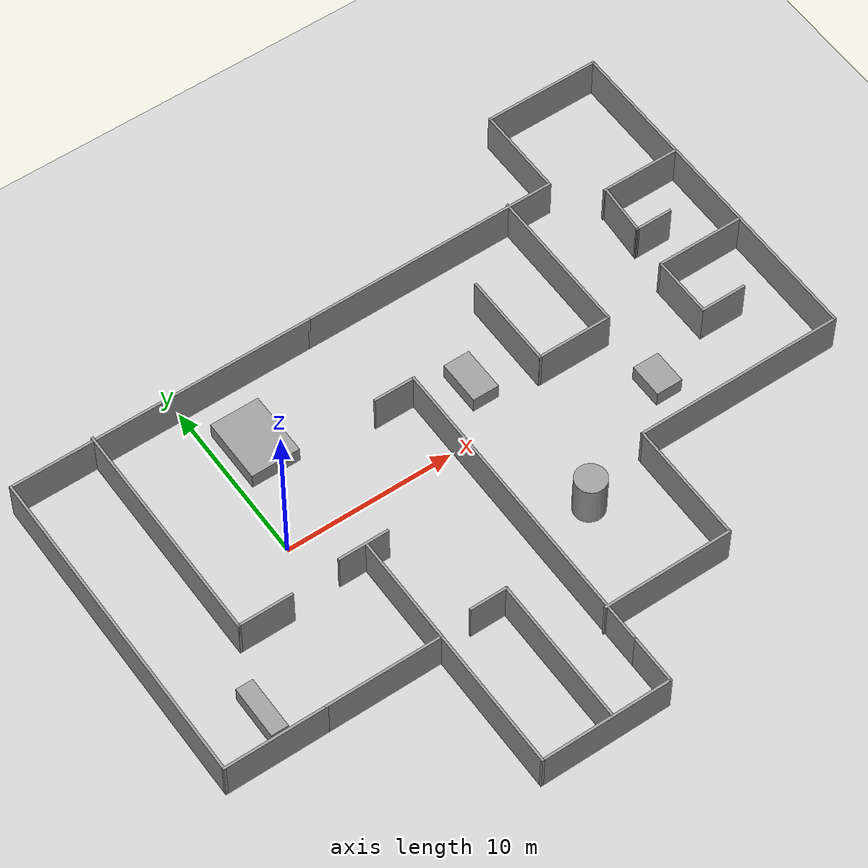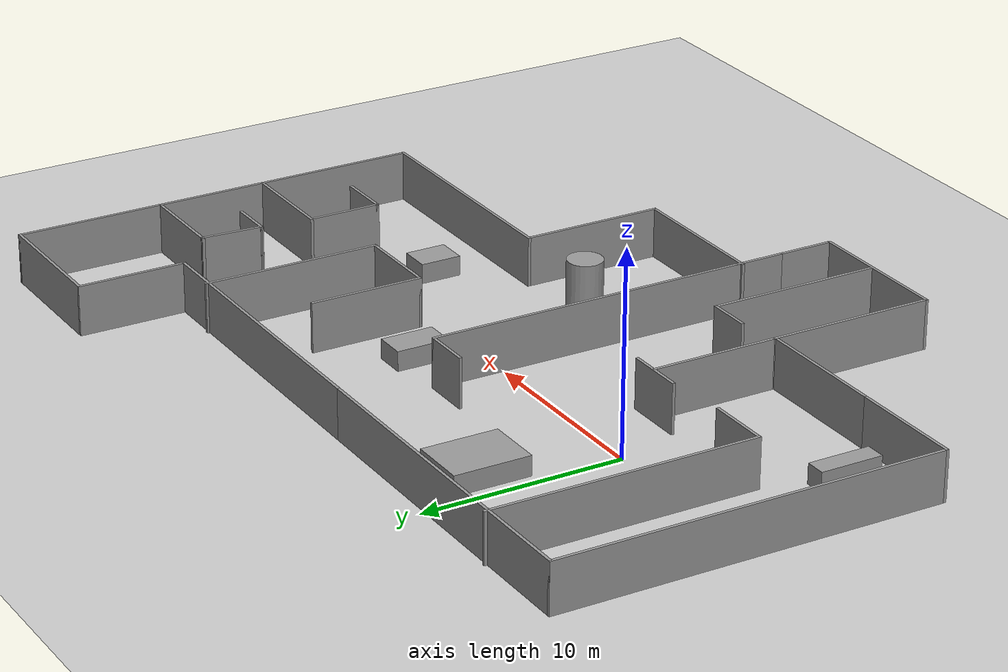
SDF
<sdf version="1.7">
 <world name="default">
  <light name="sun" type="directional">
   <pose>0 0 10 0 -0 0</pose>
   <diffuse>0.8 0.8 0.8 1</diffuse>
   <specular>0.2 0.2 0.2 1</specular>
   <attenuation>
    <range>1000</range>
    <constant>0.9</constant>
    <linear>0.01</linear>
    <quadratic>0.001</quadratic>
   </attenuation>
   <direction>-0.5 0.1 -0.9</direction>
   <spot><inner_angle>0</inner_angle><outer_angle>0</outer_angle><falloff>0</falloff></spot>
  </light>
  <model name="ground_plane">
   <static>1</static>
   <link name="link">
    <collision name="collision">
     <geometry><plane><normal>0 0 1</normal><size>100 100</size></plane></geometry>
     <surface>
      <contact><collide_bitmask>65535</collide_bitmask></contact>
      <friction><ode><mu>100</mu><mu2>50</mu2></ode></friction>
     </surface>
    </collision>
    <visual name="visual">
     <cast_shadows>0</cast_shadows>
     <geometry><plane><normal>0 0 1</normal><size>100 100</size></plane></geometry>
     <material>
      <script><uri>file://media/materials/scripts/gazebo.material</uri><name>Gazebo/Grey</name></script>
     </material>
    </visual>
   </link>
  </model>
  <gravity>0 0 -9.8</gravity>
  <magnetic_field>6e-06 2.3e-05 -4.2e-05</magnetic_field>
  <atmosphere type="adiabatic"/>
  <physics type="ode">
   <max_step_size>0.001</max_step_size>
   <real_time_factor>1</real_time_factor>
   <real_time_update_rate>1000</real_time_update_rate>
  </physics>
  <scene><ambient>0.4 0.4 0.4 1</ambient><background>0.7 0.7 0.7 1</background><shadows>1</shadows></scene>
  <audio><device>default</device></audio>
  <spherical_coordinates>
   <surface_model>EARTH_WGS84</surface_model>
   <latitude_deg>0</latitude_deg>
   <longitude_deg>0</longitude_deg>
   <elevation>0</elevation>
   <heading_deg>0</heading_deg>
  </spherical_coordinates>
  <model name="unterIItenv">
   <pose>10.0272 -1.47457 0 0 -0 0</pose>
   <link name="Wall_0">
    <collision name="Wall_0_Collision">
     <geometry><box><size>6.75 0.15 2.5</size></box></geometry>
     <pose>0 0 1.25 0 -0 0</pose>
    </collision>
    <visual name="Wall_0_Visual">
     <pose>0 0 1.25 0 -0 0</pose>
     <geometry><box><size>6.75 0.15 2.5</size></box></geometry>
     <material>
      <script><uri>file://media/materials/scripts/gazebo.material</uri><name>Gazebo/Grey</name></script>
      <ambient>1 1 1 1</ambient>
     </material>
     <meta><layer>0</layer></meta>
    </visual>
    <pose>-10.875 -8.2 0 0 -0 0</pose>
   </link>
   <link name="Wall_10">
    <collision name="Wall_10_Collision">
     <geometry><box><size>7.75 0.15 2.5</size></box></geometry>
     <pose>0 0 1.25 0 -0 0</pose>
    </collision>
    <visual name="Wall_10_Visual">
     <pose>0 0 1.25 0 -0 0</pose>
     <geometry><box><size>7.75 0.15 2.5</size></box></geometry>
     <material>
      <script><uri>file://media/materials/scripts/gazebo.material</uri><name>Gazebo/Grey</name></script>
      <ambient>1 1 1 1</ambient>
     </material>
     <meta><layer>0</layer></meta>
    </visual>
    <pose>-3.625 -16.5 0 0 -0 3.14159</pose>
   </link>
   <link name="Wall_11">
    <collision name="Wall_11_Collision">
     <geometry><box><size>8.5 0.15 2.5</size></box></geometry>
     <pose>0 0 1.25 0 -0 0</pose>
    </collision>
    <visual name="Wall_11_Visual">
     <pose>0 0 1.25 0 -0 0</pose>
     <geometry><box><size>8.5 0.15 2.5</size></box></geometry>
     <material>
      <script><uri>file://media/materials/scripts/gazebo.material</uri><name>Gazebo/Grey</name></script>
      <ambient>1 1 1 1</ambient>
     </material>
     <meta><layer>0</layer></meta>
    </visual>
    <pose>-7.425 -12.325 0 0 -0 1.5708</pose>
   </link>
   <link name="Wall_12">
    <collision name="Wall_12_Collision">
     <geometry><box><size>6.5 0.15 2.5</size></box></geometry>
     <pose>0 0 1.25 0 -0 0</pose>
    </collision>
    <visual name="Wall_12_Visual">
     <pose>0 0 1.25 0 -0 0</pose>
     <geometry><box><size>6.5 0.15 2.5</size></box></geometry>
     <material>
      <script><uri>file://media/materials/scripts/gazebo.material</uri><name>Gazebo/Grey</name></script>
      <ambient>1 1 1 1</ambient>
     </material>
     <meta><layer>0</layer></meta>
    </visual>
    <pose>-7.425 -4.975 0 0 -0 1.5708</pose>
   </link>
   <link name="Wall_14">
    <collision name="Wall_14_Collision">
     <geometry><box><size>3 0.15 2.5</size></box></geometry>
     <pose>0 0 1.25 0 -0 0</pose>
    </collision>
    <visual name="Wall_14_Visual">
     <pose>0 0 1.25 0 -0 0</pose>
     <geometry><box><size>3 0.15 2.5</size></box></geometry>
     <material>
      <script><uri>file://media/materials/scripts/gazebo.material</uri><name>Gazebo/Grey</name></script>
      <ambient>1 1 1 1</ambient>
     </material>
     <meta><layer>0</layer></meta>
    </visual>
    <pose>-7.56761 -1.72376 0 0 -0 0</pose>
   </link>
   <link name="Wall_16">
    <collision name="Wall_16_Collision">
     <geometry><box><size>8.75 0.15 2.5</size></box></geometry>
     <pose>0 0 1.25 0 -0 0</pose>
    </collision>
    <visual name="Wall_16_Visual">
     <pose>0 0 1.25 0 -0 0</pose>
     <geometry><box><size>8.75 0.15 2.5</size></box></geometry>
     <material>
      <script><uri>file://media/materials/scripts/gazebo.material</uri><name>Gazebo/Grey</name></script>
      <ambient>1 1 1 1</ambient>
     </material>
     <meta><layer>0</layer></meta>
    </visual>
    <pose>-3.26129 -12.0705 0 0 -0 1.5708</pose>
   </link>
   <link name="Wall_18">
    <collision name="Wall_18_Collision">
     <geometry><box><size>2.25 0.15 2.5</size></box></geometry>
     <pose>0 0 1.25 0 -0 0</pose>
    </collision>
    <visual name="Wall_18_Visual">
     <pose>0 0 1.25 0 -0 0</pose>
     <geometry><box><size>2.25 0.15 2.5</size></box></geometry>
     <material>
      <script><uri>file://media/materials/scripts/gazebo.material</uri><name>Gazebo/Grey</name></script>
      <ambient>1 1 1 1</ambient>
     </material>
     <meta><layer>0</layer></meta>
    </visual>
    <pose>-4.31129 -7.77047 0 0 -0 3.14159</pose>
   </link>
   <link name="Wall_2">
    <collision name="Wall_2_Collision">
     <geometry><box><size>6 0.15 2.5</size></box></geometry>
     <pose>0 0 1.25 0 -0 0</pose>
    </collision>
    <visual name="Wall_2_Visual">
     <pose>0 0 1.25 0 -0 0</pose>
     <geometry><box><size>6 0.15 2.5</size></box></geometry>
     <material>
      <script><uri>file://media/materials/scripts/gazebo.material</uri><name>Gazebo/Grey</name></script>
      <ambient>1 1 1 1</ambient>
     </material>
     <meta><layer>0</layer></meta>
    </visual>
    <pose>-17.1 -8.2 0 0 -0 3.14159</pose>
   </link>
   <link name="Wall_21">
    <collision name="Wall_21_Collision">
     <geometry><box><size>13.5 0.15 2.5</size></box></geometry>
     <pose>0 0 1.25 0 -0 0</pose>
    </collision>
    <visual name="Wall_21_Visual">
     <pose>0 0 1.25 0 -0 0</pose>
     <geometry><box><size>13.5 0.15 2.5</size></box></geometry>
     <material>
      <script><uri>file://media/materials/scripts/gazebo.material</uri><name>Gazebo/Grey</name></script>
      <ambient>1 1 1 1</ambient>
     </material>
     <meta><layer>0</layer></meta>
    </visual>
    <pose>-15.1485 4.62054 0 0 -0 -1.5708</pose>
   </link>
   <link name="Wall_22">
    <collision name="Wall_22_Collision">
     <geometry><box><size>3.25 0.15 2.5</size></box></geometry>
     <pose>0 0 1.25 0 -0 0</pose>
    </collision>
    <visual name="Wall_22_Visual">
     <pose>0 0 1.25 0 -0 0</pose>
     <geometry><box><size>3.25 0.15 2.5</size></box></geometry>
     <material>
      <script><uri>file://media/materials/scripts/gazebo.material</uri><name>Gazebo/Grey</name></script>
      <ambient>1 1 1 1</ambient>
     </material>
     <meta><layer>0</layer></meta>
    </visual>
    <pose>-13.5985 -2.05446 0 0 -0 0</pose>
   </link>
   <link name="Wall_26">
    <collision name="Wall_26_Collision">
     <geometry><box><size>15.5 0.15 2.5</size></box></geometry>
     <pose>0 0 1.25 0 -0 0</pose>
    </collision>
    <visual name="Wall_26_Visual">
     <pose>0 0 1.25 0 -0 0</pose>
     <geometry><box><size>15.5 0.15 2.5</size></box></geometry>
     <material>
      <script><uri>file://media/materials/scripts/gazebo.material</uri><name>Gazebo/Grey</name></script>
      <ambient>1 1 1 1</ambient>
     </material>
     <meta><layer>0</layer></meta>
    </visual>
    <pose>5.5 11.15 0 0 -0 0</pose>
   </link>
   <link name="Wall_27">
    <collision name="Wall_27_Collision">
     <geometry><box><size>5.5 0.15 2.5</size></box></geometry>
     <pose>0 0 1.25 0 -0 0</pose>
    </collision>
    <visual name="Wall_27_Visual">
     <pose>0 0 1.25 0 -0 0</pose>
     <geometry><box><size>5.5 0.15 2.5</size></box></geometry>
     <material>
      <script><uri>file://media/materials/scripts/gazebo.material</uri><name>Gazebo/Grey</name></script>
      <ambient>1 1 1 1</ambient>
     </material>
     <meta><layer>0</layer></meta>
    </visual>
    <pose>13.175 13.825 0 0 -0 1.5708</pose>
   </link>
   <link name="Wall_28">
    <collision name="Wall_28_Collision">
     <geometry><box><size>7 0.15 2.5</size></box></geometry>
     <pose>0 0 1.25 0 -0 0</pose>
    </collision>
    <visual name="Wall_28_Visual">
     <pose>0 0 1.25 0 -0 0</pose>
     <geometry><box><size>7 0.15 2.5</size></box></geometry>
     <material>
      <script><uri>file://media/materials/scripts/gazebo.material</uri><name>Gazebo/Grey</name></script>
      <ambient>1 1 1 1</ambient>
     </material>
     <meta><layer>0</layer></meta>
    </visual>
    <pose>16.6 16.5 0 0 -0 0</pose>
   </link>
   <link name="Wall_29">
    <collision name="Wall_29_Collision">
     <geometry><box><size>21 0.15 2.5</size></box></geometry>
     <pose>0 0 1.25 0 -0 0</pose>
    </collision>
    <visual name="Wall_29_Visual">
     <pose>0 0 1.25 0 -0 0</pose>
     <geometry><box><size>21 0.15 2.5</size></box></geometry>
     <material>
      <script><uri>file://media/materials/scripts/gazebo.material</uri><name>Gazebo/Grey</name></script>
      <ambient>1 1 1 1</ambient>
     </material>
     <meta><layer>0</layer></meta>
    </visual>
    <pose>20.025 6.075 0 0 -0 -1.5708</pose>
   </link>
   <link name="Wall_3">
    <collision name="Wall_3_Collision">
     <geometry><box><size>19.5 0.15 2.5</size></box></geometry>
     <pose>0 0 1.25 0 -0 0</pose>
    </collision>
    <visual name="Wall_3_Visual">
     <pose>0 0 1.25 0 -0 0</pose>
     <geometry><box><size>19.5 0.15 2.5</size></box></geometry>
     <material>
      <script><uri>file://media/materials/scripts/gazebo.material</uri><name>Gazebo/Grey</name></script>
      <ambient>1 1 1 1</ambient>
     </material>
     <meta><layer>0</layer></meta>
    </visual>
    <pose>-20.025 1.475 0 0 -0 1.5708</pose>
   </link>
   <link name="Wall_30">
    <collision name="Wall_30_Collision">
     <geometry><box><size>12.5 0.15 2.5</size></box></geometry>
     <pose>0 0 1.25 0 -0 0</pose>
    </collision>
    <visual name="Wall_30_Visual">
     <pose>0 0 1.25 0 -0 0</pose>
     <geometry><box><size>12.5 0.15 2.5</size></box></geometry>
     <material>
      <script><uri>file://media/materials/scripts/gazebo.material</uri><name>Gazebo/Grey</name></script>
      <ambient>1 1 1 1</ambient>
     </material>
     <meta><layer>0</layer></meta>
    </visual>
    <pose>13.85 -4.35 0 0 -0 3.14159</pose>
   </link>
   <link name="Wall_31">
    <collision name="Wall_31_Collision">
     <geometry><box><size>7.25 0.15 2.5</size></box></geometry>
     <pose>0 0 1.25 0 -0 0</pose>
    </collision>
    <visual name="Wall_31_Visual">
     <pose>0 0 1.25 0 -0 0</pose>
     <geometry><box><size>7.25 0.15 2.5</size></box></geometry>
     <material>
      <script><uri>file://media/materials/scripts/gazebo.material</uri><name>Gazebo/Grey</name></script>
      <ambient>1 1 1 1</ambient>
     </material>
     <meta><layer>0</layer></meta>
    </visual>
    <pose>7.675 -7.9 0 0 -0 -1.5708</pose>
   </link>
   <link name="Wall_34">
    <collision name="Wall_34_Collision">
     <geometry><box><size>7.75 0.15 2.5</size></box></geometry>
     <pose>0 0 1.25 0 -0 0</pose>
    </collision>
    <visual name="Wall_34_Visual">
     <pose>0 0 1.25 0 -0 0</pose>
     <geometry><box><size>7.75 0.15 2.5</size></box></geometry>
     <material>
      <script><uri>file://media/materials/scripts/gazebo.material</uri><name>Gazebo/Grey</name></script>
      <ambient>1 1 1 1</ambient>
     </material>
     <meta><layer>0</layer></meta>
    </visual>
    <pose>3.875 -11.45 0 0 -0 3.14159</pose>
   </link>
   <link name="Wall_36">
    <collision name="Wall_36_Collision">
     <geometry><box><size>4.75 0.15 2.5</size></box></geometry>
     <pose>0 0 1.25 0 -0 0</pose>
    </collision>
    <visual name="Wall_36_Visual">
     <pose>0 0 1.25 0 -0 0</pose>
     <geometry><box><size>4.75 0.15 2.5</size></box></geometry>
     <material>
      <script><uri>file://media/materials/scripts/gazebo.material</uri><name>Gazebo/Grey</name></script>
      <ambient>1 1 1 1</ambient>
     </material>
     <meta><layer>0</layer></meta>
    </visual>
    <pose>17.6385 9.12255 0 0 -0 3.14159</pose>
   </link>
   <link name="Wall_37">
    <collision name="Wall_37_Collision">
     <geometry><box><size>3.18945 0.15 2.5</size></box></geometry>
     <pose>0 0 1.25 0 -0 0</pose>
    </collision>
    <visual name="Wall_37_Visual">
     <pose>0 0 1.25 0 -0 0</pose>
     <geometry><box><size>3.18945 0.15 2.5</size></box></geometry>
     <material>
      <script><uri>file://media/materials/scripts/gazebo.material</uri><name>Gazebo/Grey</name></script>
      <ambient>1 1 1 1</ambient>
     </material>
     <meta><layer>0</layer></meta>
    </visual>
    <pose>15.3031 7.60654 0 0 -0 -1.64069</pose>
   </link>
   <link name="Wall_38">
    <collision name="Wall_38_Collision">
     <geometry><box><size>2.25 0.15 2.5</size></box></geometry>
     <pose>0 0 1.25 0 -0 0</pose>
    </collision>
    <visual name="Wall_38_Visual">
     <pose>0 0 1.25 0 -0 0</pose>
     <geometry><box><size>2.25 0.15 2.5</size></box></geometry>
     <material>
      <script><uri>file://media/materials/scripts/gazebo.material</uri><name>Gazebo/Grey</name></script>
      <ambient>1 1 1 1</ambient>
     </material>
     <meta><layer>0</layer></meta>
    </visual>
    <pose>16.247 6.09052 0 0 -0 0</pose>
   </link>
   <link name="Wall_4">
    <collision name="Wall_4_Collision">
     <geometry><box><size>18 0.15 2.5</size></box></geometry>
     <pose>0 0 1.25 0 -0 0</pose>
    </collision>
    <visual name="Wall_4_Visual">
     <pose>0 0 1.25 0 -0 0</pose>
     <geometry><box><size>18 0.15 2.5</size></box></geometry>
     <material>
      <script><uri>file://media/materials/scripts/gazebo.material</uri><name>Gazebo/Grey</name></script>
      <ambient>1 1 1 1</ambient>
     </material>
     <meta><layer>0</layer></meta>
    </visual>
    <pose>-11.1 11.15 0 0 -0 0</pose>
   </link>
   <link name="Wall_40">
    <collision name="Wall_40_Collision">
     <geometry><box><size>5.25 0.15 2.5</size></box></geometry>
     <pose>0 0 1.25 0 -0 0</pose>
    </collision>
    <visual name="Wall_40_Visual">
     <pose>0 0 1.25 0 -0 0</pose>
     <geometry><box><size>5.25 0.15 2.5</size></box></geometry>
     <material>
      <script><uri>file://media/materials/scripts/gazebo.material</uri><name>Gazebo/Grey</name></script>
      <ambient>1 1 1 1</ambient>
     </material>
     <meta><layer>0</layer></meta>
    </visual>
    <pose>17.3893 3.57464 0 0 -0 3.14159</pose>
   </link>
   <link name="Wall_41">
    <collision name="Wall_41_Collision">
     <geometry><box><size>3.75 0.15 2.5</size></box></geometry>
     <pose>0 0 1.25 0 -0 0</pose>
    </collision>
    <visual name="Wall_41_Visual">
     <pose>0 0 1.25 0 -0 0</pose>
     <geometry><box><size>3.75 0.15 2.5</size></box></geometry>
     <material>
      <script><uri>file://media/materials/scripts/gazebo.material</uri><name>Gazebo/Grey</name></script>
      <ambient>1 1 1 1</ambient>
     </material>
     <meta><layer>0</layer></meta>
    </visual>
    <pose>14.8393 1.77464 0 0 -0 -1.5708</pose>
   </link>
   <link name="Wall_42">
    <collision name="Wall_42_Collision">
     <geometry><box><size>2.75 0.15 2.5</size></box></geometry>
     <pose>0 0 1.25 0 -0 0</pose>
    </collision>
    <visual name="Wall_42_Visual">
     <pose>0 0 1.25 0 -0 0</pose>
     <geometry><box><size>2.75 0.15 2.5</size></box></geometry>
     <material>
      <script><uri>file://media/materials/scripts/gazebo.material</uri><name>Gazebo/Grey</name></script>
      <ambient>1 1 1 1</ambient>
     </material>
     <meta><layer>0</layer></meta>
    </visual>
    <pose>16.1393 -0.025362 0 0 -0 0</pose>
   </link>
   <link name="Wall_44">
    <collision name="Wall_44_Collision">
     <geometry><box><size>9 0.15 2.5</size></box></geometry>
     <pose>0 0 1.25 0 -0 0</pose>
    </collision>
    <visual name="Wall_44_Visual">
     <pose>0 0 1.25 0 -0 0</pose>
     <geometry><box><size>9 0.15 2.5</size></box></geometry>
     <material>
      <script><uri>file://media/materials/scripts/gazebo.material</uri><name>Gazebo/Grey</name></script>
      <ambient>1 1 1 1</ambient>
     </material>
     <meta><layer>0</layer></meta>
    </visual>
    <pose>10.5463 6.83479 0 0 -0 -1.5708</pose>
   </link>
   <link name="Wall_45">
    <collision name="Wall_45_Collision">
     <geometry><box><size>4.5 0.15 2.5</size></box></geometry>
     <pose>0 0 1.25 0 -0 0</pose>
    </collision>
    <visual name="Wall_45_Visual">
     <pose>0 0 1.25 0 -0 0</pose>
     <geometry><box><size>4.5 0.15 2.5</size></box></geometry>
     <material>
      <script><uri>file://media/materials/scripts/gazebo.material</uri><name>Gazebo/Grey</name></script>
      <ambient>1 1 1 1</ambient>
     </material>
     <meta><layer>0</layer></meta>
    </visual>
    <pose>8.37134 2.40979 0 0 -0 3.14159</pose>
   </link>
   <link name="Wall_46">
    <collision name="Wall_46_Collision">
     <geometry><box><size>5.75 0.15 2.5</size></box></geometry>
     <pose>0 0 1.25 0 -0 0</pose>
    </collision>
    <visual name="Wall_46_Visual">
     <pose>0 0 1.25 0 -0 0</pose>
     <geometry><box><size>5.75 0.15 2.5</size></box></geometry>
     <material>
      <script><uri>file://media/materials/scripts/gazebo.material</uri><name>Gazebo/Grey</name></script>
      <ambient>1 1 1 1</ambient>
     </material>
     <meta><layer>0</layer></meta>
    </visual>
    <pose>6.19633 5.20979 0 0 -0 1.5708</pose>
   </link>
   <link name="Wall_6">
    <collision name="Wall_6_Collision">
     <geometry><box><size>2.5 0.15 2.5</size></box></geometry>
     <pose>0 0 1.25 0 -0 0</pose>
    </collision>
    <visual name="Wall_6_Visual">
     <pose>0 0 1.25 0 -0 0</pose>
     <geometry><box><size>2.5 0.15 2.5</size></box></geometry>
     <material>
      <script><uri>file://media/materials/scripts/gazebo.material</uri><name>Gazebo/Grey</name></script>
      <ambient>1 1 1 1</ambient>
     </material>
     <meta><layer>0</layer></meta>
    </visual>
    <pose>-1 5.05 0 0 -0 0</pose>
   </link>
   <link name="Wall_7">
    <collision name="Wall_7_Collision">
     <geometry><box><size>16.5 0.15 2.5</size></box></geometry>
     <pose>0 0 1.25 0 -0 0</pose>
    </collision>
    <visual name="Wall_7_Visual">
     <pose>0 0 1.25 0 -0 0</pose>
     <geometry><box><size>16.5 0.15 2.5</size></box></geometry>
     <material>
      <script><uri>file://media/materials/scripts/gazebo.material</uri><name>Gazebo/Grey</name></script>
      <ambient>1 1 1 1</ambient>
     </material>
     <meta><layer>0</layer></meta>
    </visual>
    <pose>0.175 -3.125 0 0 -0 -1.5708</pose>
   </link>
   <link name="Wall_8">
    <collision name="Wall_8_Collision">
     <geometry><box><size>2.5 0.15 2.5</size></box></geometry>
     <pose>0 0 1.25 0 -0 0</pose>
    </collision>
    <visual name="Wall_8_Visual">
     <pose>0 0 1.25 0 -0 0</pose>
     <geometry><box><size>2.5 0.15 2.5</size></box></geometry>
     <material>
      <script><uri>file://media/materials/scripts/gazebo.material</uri><name>Gazebo/Grey</name></script>
      <ambient>1 1 1 1</ambient>
     </material>
     <meta><layer>0</layer></meta>
    </visual>
    <pose>0.175 -12.475 0 0 -0 -1.5708</pose>
   </link>
   <link name="Wall_9">
    <collision name="Wall_9_Collision">
     <geometry><box><size>3 0.15 2.5</size></box></geometry>
     <pose>0 0 1.25 0 -0 0</pose>
    </collision>
    <visual name="Wall_9_Visual">
     <pose>0 0 1.25 0 -0 0</pose>
     <geometry><box><size>3 0.15 2.5</size></box></geometry>
     <material>
      <script><uri>file://media/materials/scripts/gazebo.material</uri><name>Gazebo/Grey</name></script>
      <ambient>1 1 1 1</ambient>
     </material>
     <meta><layer>0</layer></meta>
    </visual>
    <pose>0.175 -15.075 0 0 -0 -1.5708</pose>
   </link>
   <static>1</static>
  </model>
  <light name="user_point_light_0" type="point">
   <pose>15.6208 -3.31977 1 0 -0 0</pose>
   <diffuse>0.5 0.5 0.5 1</diffuse>
   <specular>0.1 0.1 0.1 1</specular>
   <attenuation>
    <range>20</range>
    <constant>0.5</constant>
    <linear>0.01</linear>
    <quadratic>0.001</quadratic>
   </attenuation>
   <cast_shadows>0</cast_shadows>
   <direction>0 0 -1</direction>
  </light>
  <light name="user_point_light_1" type="point">
   <pose>-2.67019 6.16467 1 0 -0 0</pose>
   <diffuse>0.5 0.5 0.5 1</diffuse>
   <specular>0.1 0.1 0.1 1</specular>
   <attenuation>
    <range>20</range>
    <constant>0.5</constant>
    <linear>0.01</linear>
    <quadratic>0.001</quadratic>
   </attenuation>
   <cast_shadows>0</cast_shadows>
   <direction>0 0 -1</direction>
  </light>
  <light name="user_point_light_2" type="point">
   <pose>27.4887 11.7713 1 0 -0 0</pose>
   <diffuse>0.5 0.5 0.5 1</diffuse>
   <specular>0.1 0.1 0.1 1</specular>
   <attenuation>
    <range>20</range>
    <constant>0.5</constant>
    <linear>0.01</linear>
    <quadratic>0.001</quadratic>
   </attenuation>
   <cast_shadows>0</cast_shadows>
   <direction>0 0 -1</direction>
  </light>
  <light name="user_point_light_3" type="point">
   <pose>27.1146 10.9614 1 0 -0 0</pose>
   <diffuse>0.5 0.5 0.5 1</diffuse>
   <specular>0.1 0.1 0.1 1</specular>
   <attenuation>
    <range>20</range>
    <constant>0.5</constant>
    <linear>0.01</linear>
    <quadratic>0.001</quadratic>
   </attenuation>
   <cast_shadows>0</cast_shadows>
   <direction>0 0 -1</direction>
  </light>
  <light name="user_point_light_4" type="point">
   <pose>-6.50531 -14.5728 1 0 -0 0</pose>
   <diffuse>0.5 0.5 0.5 1</diffuse>
   <specular>0.1 0.1 0.1 1</specular>
   <attenuation>
    <range>20</range>
    <constant>0.5</constant>
    <linear>0.01</linear>
    <quadratic>0.001</quadratic>
   </attenuation>
   <cast_shadows>0</cast_shadows>
   <direction>0 0 -1</direction>
  </light>
  <light name="user_point_light_5" type="point">
   <pose>24.5409 -14.1106 1 0 -0 0</pose>
   <diffuse>0.5 0.5 0.5 1</diffuse>
   <specular>0.1 0.1 0.1 1</specular>
   <attenuation>
    <range>20</range>
    <constant>0.5</constant>
    <linear>0.01</linear>
    <quadratic>0.001</quadratic>
   </attenuation>
   <cast_shadows>0</cast_shadows>
   <direction>0 0 -1</direction>
  </light>
  <light name="user_point_light_6" type="point">
   <pose>1.3482 16.498 1 0 -0 0</pose>
   <diffuse>0.5 0.5 0.5 1</diffuse>
   <specular>0.1 0.1 0.1 1</specular>
   <attenuation>
    <range>20</range>
    <constant>0.5</constant>
    <linear>0.01</linear>
    <quadratic>0.001</quadratic>
   </attenuation>
   <cast_shadows>0</cast_shadows>
   <direction>0 0 -1</direction>
  </light>
  <model name="unit_box">
   <pose>2.10091 6.06594 0.499854 0 0.000101 0</pose>
   <link name="link">
    <inertial>
     <mass>1</mass>
     <inertia>
      <ixx>0.166667</ixx>
      <ixy>0</ixy>
      <ixz>0</ixz>
      <iyy>0.166667</iyy>
      <iyz>0</iyz>
      <izz>0.166667</izz>
     </inertia>
    </inertial>
    <collision name="collision"><geometry><box><size>2.89865 3.83759 1</size></box></geometry></collision>
    <visual name="visual">
     <geometry><box><size>2.89865 3.83759 1</size></box></geometry>
     <material>
      <script><name>Gazebo/Grey</name><uri>file://media/materials/scripts/gazebo.material</uri></script>
     </material>
    </visual>
   </link>
  </model>
  <model name="unit_box_0">
   <pose>13.2843 2.84221 0.499912 6.7e-05 -0 0</pose>
   <link name="link">
    <inertial>
     <mass>1</mass>
     <inertia>
      <ixx>0.166667</ixx>
      <ixy>0</ixy>
      <ixz>0</ixz>
      <iyy>0.166667</iyy>
      <iyz>0</iyz>
      <izz>0.166667</izz>
     </inertia>
    </inertial>
    <collision name="collision"><geometry><box><size>1.57481 2.64916 1</size></box></geometry></collision>
    <visual name="visual">
     <geometry><box><size>1.57481 2.64916 1</size></box></geometry>
     <material>
      <script><name>Gazebo/Grey</name><uri>file://media/materials/scripts/gazebo.material</uri></script>
     </material>
    </visual>
   </link>
  </model>
  <model name="unit_cylinder">
   <pose>13.8698 -6.60333 1.34971 0 0 -1.5e-05</pose>
   <link name="link">
    <inertial>
     <mass>1</mass>
     <inertia><ixx>0.145833</ixx><ixy>0</ixy><ixz>0</ixz><iyy>0.145833</iyy><iyz>0</iyz><izz>0.125</izz></inertia>
    </inertial>
    <collision name="collision">
     <geometry><cylinder><radius>0.893345</radius><length>2.69944</length></cylinder></geometry>
    </collision>
    <visual name="visual">
     <geometry><cylinder><radius>0.893345</radius><length>2.69944</length></cylinder></geometry>
     <material>
      <script><name>Gazebo/Grey</name><uri>file://media/materials/scripts/gazebo.material</uri></script>
     </material>
    </visual>
   </link>
  </model>
  <model name="unit_box_1">
   <pose>-6.28176 -7.22875 0.499777 0.000142 -0 0</pose>
   <link name="link">
    <inertial>
     <mass>1</mass>
     <inertia>
      <ixx>0.166667</ixx>
      <ixy>0</ixy>
      <ixz>0</ixz>
      <iyy>0.166667</iyy>
      <iyz>0</iyz>
      <izz>0.166667</izz>
     </inertia>
    </inertial>
    <collision name="collision"><geometry><box><size>1 3.14071 1</size></box></geometry></collision>
    <visual name="visual">
     <geometry><box><size>1 3.14071 1</size></box></geometry>
     <material>
      <script><name>Gazebo/Grey</name><uri>file://media/materials/scripts/gazebo.material</uri></script>
     </material>
    </visual>
   </link>
  </model>
  <model name="unit_box_2">
   <pose>21.2081 -2.56094 0.499982 -1.8e-05 -0 0</pose>
   <link name="link">
    <inertial>
     <mass>1</mass>
     <inertia>
      <ixx>0.166667</ixx>
      <ixy>0</ixy>
      <ixz>0</ixz>
      <iyy>0.166667</iyy>
      <iyz>0</iyz>
      <izz>0.166667</izz>
     </inertia>
    </inertial>
    <collision name="collision"><geometry><box><size>1.58816 2.06225 1</size></box></geometry></collision>
    <visual name="visual">
     <geometry><box><size>1.58816 2.06225 1</size></box></geometry>
     <material>
      <script><name>Gazebo/Grey</name><uri>file://media/materials/scripts/gazebo.material</uri></script>
     </material>
    </visual>
   </link>
  </model>
 </world>
</sdf>
